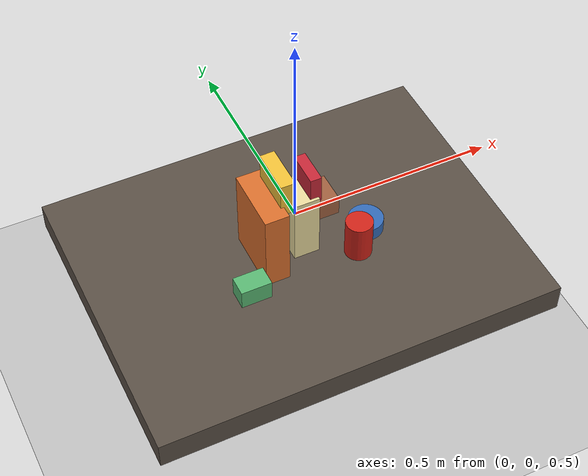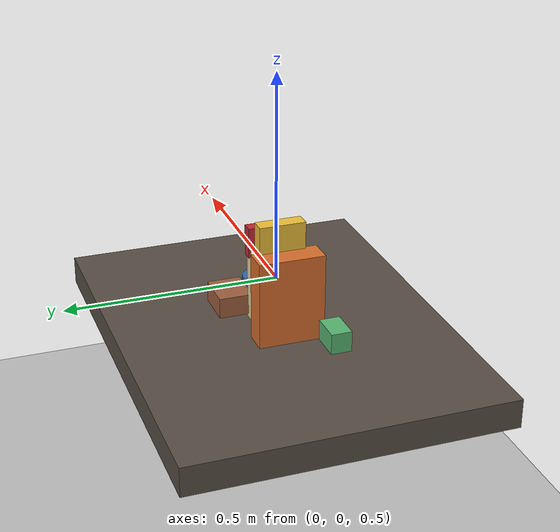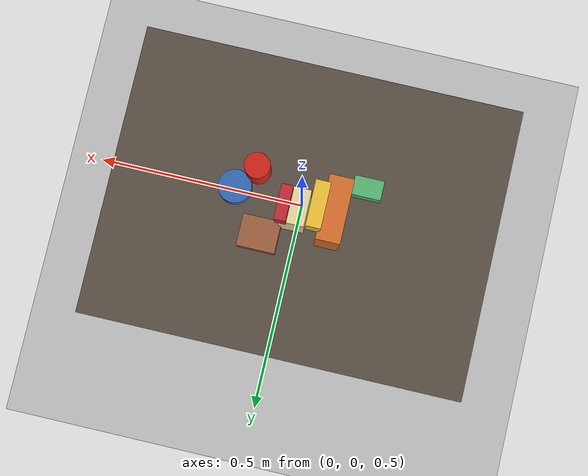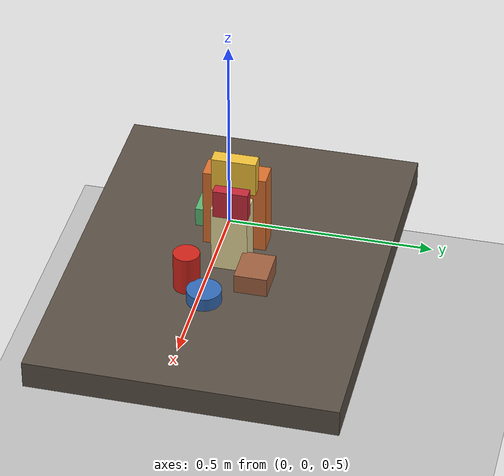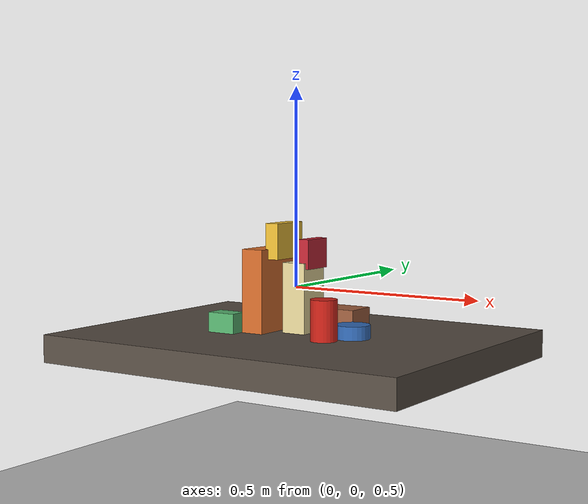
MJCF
<mujoco model="ycb_lite_stacked">
  <compiler angle="radian" autolimits="true"/>

  <option timestep="0.002" gravity="0 0 -9.81" integrator="RK4"/>
  <visual>
    <global offwidth="1280" offheight="900"/>
  </visual>

  <default>
    <joint damping="0.01"/>
    <geom condim="4" friction="1.05 0.006 0.0001" solref="0.01 1" solimp="0.9 0.95 0.001"/>
  </default>

  <asset>
    <texture name="grid" type="2d" builtin="checker" width="512" height="512" rgb1="0.82 0.82 0.82" rgb2="0.68 0.68 0.68"/>
    <material name="floor_mat" texture="grid" texrepeat="2 2" reflectance="0.15"/>
    <material name="table_mat" rgba="0.35 0.31 0.27 1"/>
    <material name="cracker_mat" rgba="0.86 0.44 0.18 1"/>
    <material name="sugar_mat" rgba="0.92 0.86 0.62 1"/>
    <material name="pudding_mat" rgba="0.95 0.76 0.22 1"/>
    <material name="gelatin_mat" rgba="0.78 0.16 0.22 1"/>
    <material name="soup_mat" rgba="0.82 0.14 0.10 1"/>
    <material name="tuna_mat" rgba="0.20 0.42 0.72 1"/>
    <material name="foam_mat" rgba="0.35 0.72 0.45 1"/>
    <material name="meat_mat" rgba="0.63 0.38 0.25 1"/>
  </asset>

  <worldbody>
    <light name="key_light" pos="0.25 -0.55 1.2" dir="-0.2 0.45 -1"/>
    <camera name="overview" mode="targetbody" target="table" pos="0.82 -0.92 1.08" fovy="62"/>
    <camera name="topdown" mode="targetbody" target="table" pos="0.00 0.00 1.45" fovy="54"/>
    <camera name="front" mode="targetbody" target="table" pos="0.00 -1.20 0.72" fovy="55"/>
    <geom name="floor" type="plane" size="1.2 1.2 0.02" material="floor_mat"/>

    <body name="table" pos="0 0 0.35">
      <geom name="table_top" type="box" size="0.50 0.38 0.035" material="table_mat"/>
    </body>

    <!-- YCB-Lite starter set. Collision geoms are simplified to stable primitives. -->
    <body name="obj_003_cracker_box" pos="-0.080 0.000 0.490">
      <freejoint/>
      <geom name="obj_003_cracker_box_geom" type="box" size="0.030 0.079 0.105" mass="0.411" material="cracker_mat"/>
    </body>

    <body name="obj_004_sugar_box" pos="0.015 0.010 0.475">
      <freejoint/>
      <geom name="obj_004_sugar_box_geom" type="box" size="0.032 0.045 0.088" mass="0.514" material="sugar_mat"/>
    </body>

    <body name="obj_008_pudding_box" pos="-0.040 0.005 0.615">
      <freejoint/>
      <geom name="obj_008_pudding_box_geom" type="box" size="0.018 0.055 0.045" mass="0.187" material="pudding_mat"/>
    </body>

    <body name="obj_009_gelatin_box" pos="0.040 0.015 0.585">
      <freejoint/>
      <geom name="obj_009_gelatin_box_geom" type="box" size="0.014 0.043 0.037" mass="0.097" material="gelatin_mat"/>
    </body>

    <body name="obj_005_tomato_soup_can" pos="0.130 -0.075 0.435">
      <freejoint/>
      <geom name="obj_005_tomato_soup_can_geom" type="cylinder" size="0.033 0.051" mass="0.349" material="soup_mat"/>
    </body>

    <body name="obj_007_tuna_fish_can" pos="0.178 -0.020 0.405">
      <freejoint/>
      <geom name="obj_007_tuna_fish_can_geom" type="cylinder" size="0.043 0.017" mass="0.171" material="tuna_mat"/>
    </body>

    <body name="obj_061_foam_brick" pos="-0.150 -0.090 0.410">
      <freejoint/>
      <geom name="obj_061_foam_brick_geom" type="box" size="0.038 0.025 0.025" mass="0.028" material="foam_mat"/>
    </body>

    <body name="obj_010_potted_meat_can" pos="0.090 0.085 0.420">
      <freejoint/>
      <geom name="obj_010_potted_meat_can_geom" type="box" size="0.049 0.041 0.025" mass="0.370" material="meat_mat"/>
    </body>
  </worldbody>
</mujoco>
